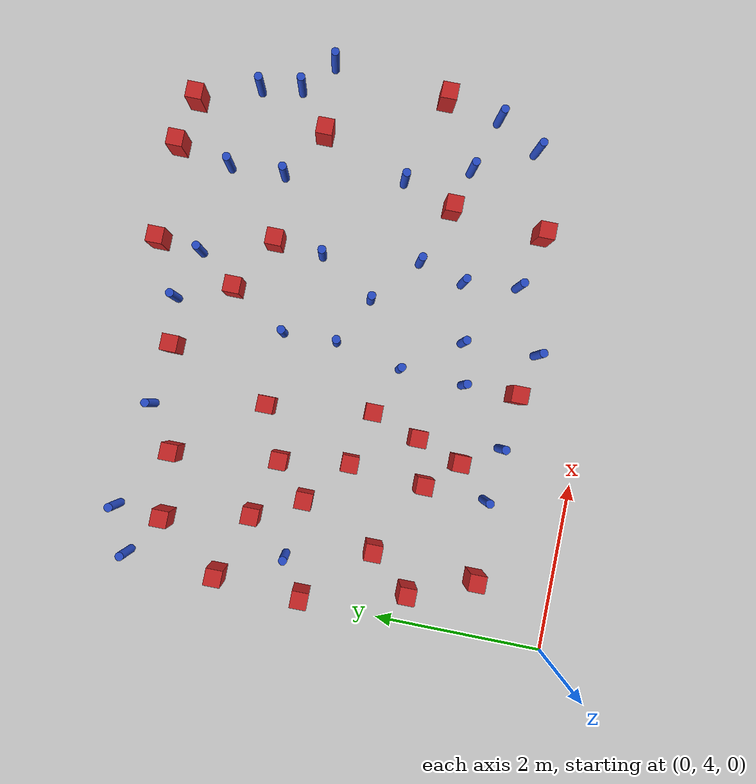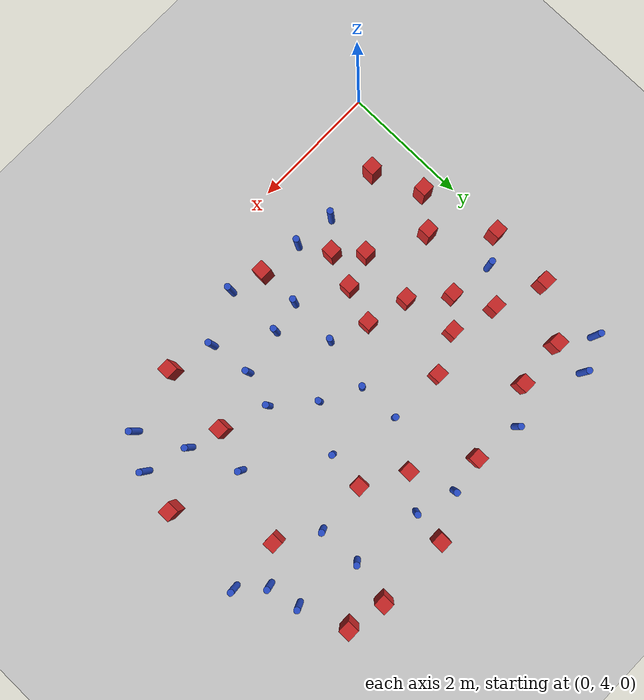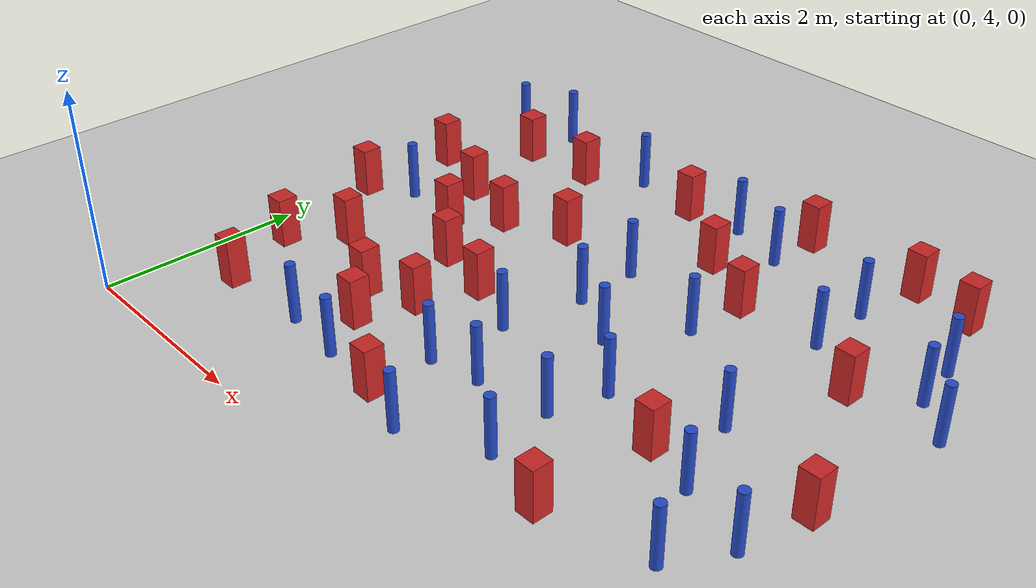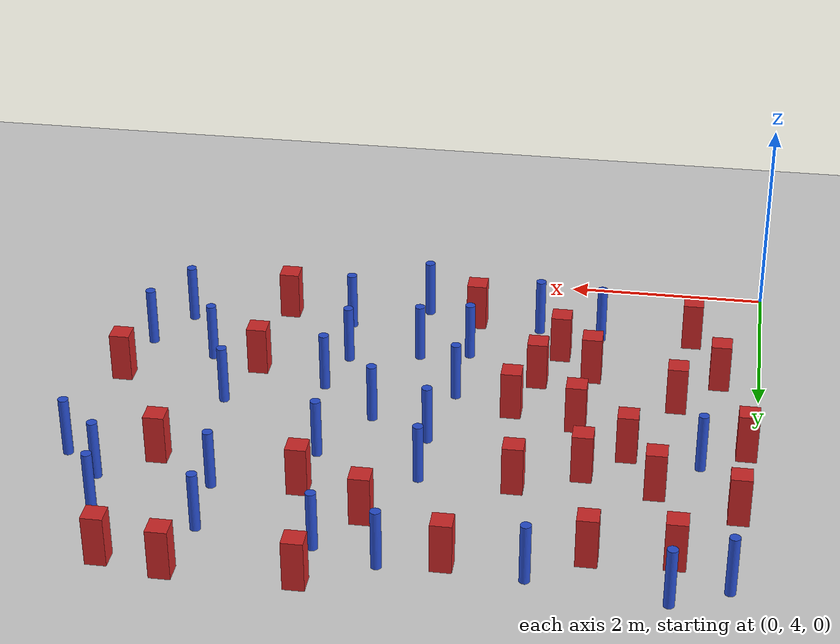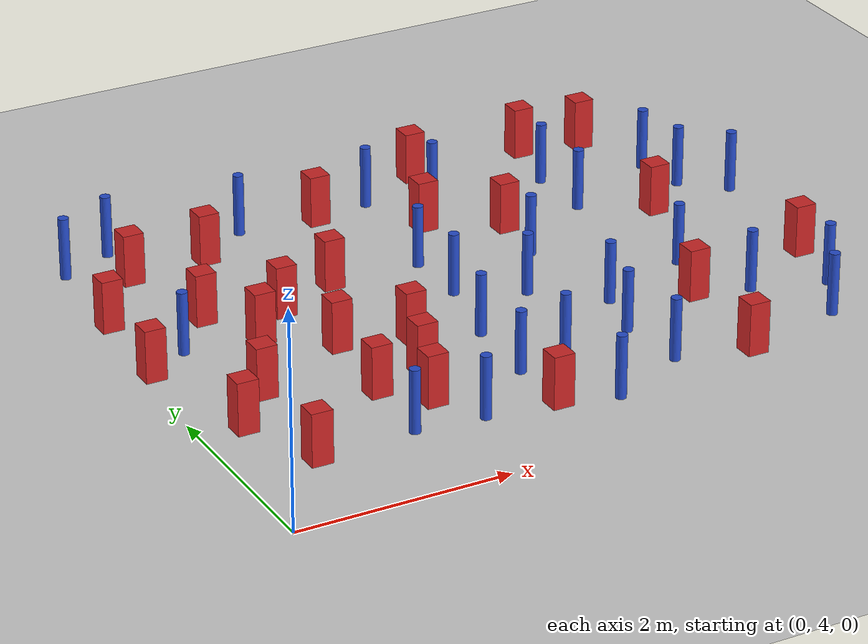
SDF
<sdf version="1.6">
 <world name="default">
  <model name="ground_plane">
   <static>1</static>
   <link name="link">
    <collision name="collision">
     <geometry><plane><normal>0 0 1</normal><size>100 100</size></plane></geometry>
     <surface><friction><ode><mu>100</mu><mu2>50</mu2></ode></friction></surface>
    </collision>
    <visual name="visual">
     <cast_shadows>0</cast_shadows>
     <geometry><plane><normal>0 0 1</normal><size>100 100</size></plane></geometry>
     <material>
      <ambient>1.0 1.0 1.0 1.0</ambient>
      <diffuse>0.8 0.8 0.8 1.0</diffuse>
      <specular>0.01 0.01 0.01 1.000000</specular>
     </material>
    </visual>
   </link>
  </model>
  <model name="pole_obstacle7">
   <static>true</static>
   <pose>3.45818707849 4.71534439706 7.38925637345e-09 -8.47170692798e-08 1.24976765033e-08 -1.74513093019e-07</pose>
   <link name="link">
    <pose>0 0 0.3 0 -0 0</pose>
    <inertial>
     <mass>1</mass>
     <inertia><ixx>0.145833</ixx><ixy>0</ixy><ixz>0</ixz><iyy>0.145833</iyy><iyz>0</iyz><izz>0.125</izz></inertia>
    </inertial>
    <collision name="collision">
     <geometry><cylinder><radius>0.05</radius><length>.6</length></cylinder></geometry>
    </collision>
    <visual name="visual">
     <geometry><cylinder><radius>0.05</radius><length>.6</length></cylinder></geometry>
     <material>
      <script><name>Gazebo/Blue</name><uri>file://media/materials/scripts/gazebo.material</uri></script>
     </material>
    </visual>
   </link>
  </model>
  <model name="square_post_obstacle20">
   <static>true</static>
   <pose>0.706519905904 8.71554573499 1.91545236811e-07 -7.35059704564e-06 1.12565212e-07 2.39332434364e-05</pose>
   <link name="link">
    <pose>0 0 0.25 0 -0 0</pose>
    <inertial>
     <mass>100</mass>
     <inertia>
      <ixx>0.166667</ixx>
      <ixy>0</ixy>
      <ixz>0</ixz>
      <iyy>0.166667</iyy>
      <iyz>0</iyz>
      <izz>0.166667</izz>
     </inertia>
    </inertial>
    <collision name="collision"><geometry><box><size>.2 .2 .5</size></box></geometry></collision>
    <visual name="visual">
     <geometry><box><size>.2 .2 .5</size></box></geometry>
     <material>
      <script><name>Gazebo/Red</name><uri>file://media/materials/scripts/gazebo.material</uri></script>
     </material>
    </visual>
   </link>
  </model>
  <model name="pole_obstacle13">
   <static>true</static>
   <pose>0.733278548144 9.29308297402 7.38925637345e-09 -8.47170692797e-08 1.249767648e-08 -1.74513093032e-07</pose>
   <link name="link">
    <pose>0 0 0.3 0 -0 0</pose>
    <inertial>
     <mass>1</mass>
     <inertia><ixx>0.145833</ixx><ixy>0</ixy><ixz>0</ixz><iyy>0.145833</iyy><iyz>0</iyz><izz>0.125</izz></inertia>
    </inertial>
    <collision name="collision">
     <geometry><cylinder><radius>0.05</radius><length>.6</length></cylinder></geometry>
    </collision>
    <visual name="visual">
     <geometry><cylinder><radius>0.05</radius><length>.6</length></cylinder></geometry>
     <material>
      <script><name>Gazebo/Blue</name><uri>file://media/materials/scripts/gazebo.material</uri></script>
     </material>
    </visual>
   </link>
  </model>
  <model name="square_post_obstacle28">
   <static>true</static>
   <pose>4.9093451671 4.91198864707 1.91545236811e-07 -7.35059704564e-06 1.12565212e-07 2.39332434364e-05</pose>
   <link name="link">
    <pose>0 0 0.25 0 -0 0</pose>
    <inertial>
     <mass>100</mass>
     <inertia>
      <ixx>0.166667</ixx>
      <ixy>0</ixy>
      <ixz>0</ixz>
      <iyy>0.166667</iyy>
      <iyz>0</iyz>
      <izz>0.166667</izz>
     </inertia>
    </inertial>
    <collision name="collision"><geometry><box><size>.2 .2 .5</size></box></geometry></collision>
    <visual name="visual">
     <geometry><box><size>.2 .2 .5</size></box></geometry>
     <material>
      <script><name>Gazebo/Red</name><uri>file://media/materials/scripts/gazebo.material</uri></script>
     </material>
    </visual>
   </link>
  </model>
  <model name="pole_obstacle20">
   <static>true</static>
   <pose>6.02067596225 8.62551435372 7.38925637345e-09 -8.471706928e-08 1.24976765081e-08 -1.74513093015e-07</pose>
   <link name="link">
    <pose>0 0 0.3 0 -0 0</pose>
    <inertial>
     <mass>1</mass>
     <inertia><ixx>0.145833</ixx><ixy>0</ixy><ixz>0</ixz><iyy>0.145833</iyy><iyz>0</iyz><izz>0.125</izz></inertia>
    </inertial>
    <collision name="collision">
     <geometry><cylinder><radius>0.05</radius><length>.6</length></cylinder></geometry>
    </collision>
    <visual name="visual">
     <geometry><cylinder><radius>0.05</radius><length>.6</length></cylinder></geometry>
     <material>
      <script><name>Gazebo/Blue</name><uri>file://media/materials/scripts/gazebo.material</uri></script>
     </material>
    </visual>
   </link>
  </model>
  <model name="pole_obstacle22">
   <static>true</static>
   <pose>5.23331904434 6.6819594275 7.38925637345e-09 -8.47170692796e-08 1.24976764786e-08 -1.74513093032e-07</pose>
   <link name="link">
    <pose>0 0 0.3 0 -0 0</pose>
    <inertial>
     <mass>1</mass>
     <inertia><ixx>0.145833</ixx><ixy>0</ixy><ixz>0</ixz><iyy>0.145833</iyy><iyz>0</iyz><izz>0.125</izz></inertia>
    </inertial>
    <collision name="collision">
     <geometry><cylinder><radius>0.05</radius><length>.6</length></cylinder></geometry>
    </collision>
    <visual name="visual">
     <geometry><cylinder><radius>0.05</radius><length>.6</length></cylinder></geometry>
     <material>
      <script><name>Gazebo/Blue</name><uri>file://media/materials/scripts/gazebo.material</uri></script>
     </material>
    </visual>
   </link>
  </model>
  <model name="pole_obstacle40">
   <static>true</static>
   <pose>5.00464682776 8.79937549846 7.38925637345e-09 -8.471706928e-08 1.24976765081e-08 -1.74513093015e-07</pose>
   <link name="link">
    <pose>0 0 0.3 0 -0 0</pose>
    <inertial>
     <mass>1</mass>
     <inertia><ixx>0.145833</ixx><ixy>0</ixy><ixz>0</ixz><iyy>0.145833</iyy><iyz>0</iyz><izz>0.125</izz></inertia>
    </inertial>
    <collision name="collision">
     <geometry><cylinder><radius>0.05</radius><length>.6</length></cylinder></geometry>
    </collision>
    <visual name="visual">
     <geometry><cylinder><radius>0.05</radius><length>.6</length></cylinder></geometry>
     <material>
      <script><name>Gazebo/Blue</name><uri>file://media/materials/scripts/gazebo.material</uri></script>
     </material>
    </visual>
   </link>
  </model>
  <model name="square_post_obstacle42">
   <static>true</static>
   <pose>1.62798420576 7.49462532593 1.91545236811e-07 -7.35059704564e-06 1.12565212e-07 2.39332434364e-05</pose>
   <link name="link">
    <pose>0 0 0.25 0 -0 0</pose>
    <inertial>
     <mass>100</mass>
     <inertia>
      <ixx>0.166667</ixx>
      <ixy>0</ixy>
      <ixz>0</ixz>
      <iyy>0.166667</iyy>
      <iyz>0</iyz>
      <izz>0.166667</izz>
     </inertia>
    </inertial>
    <collision name="collision"><geometry><box><size>.2 .2 .5</size></box></geometry></collision>
    <visual name="visual">
     <geometry><box><size>.2 .2 .5</size></box></geometry>
     <material>
      <script><name>Gazebo/Red</name><uri>file://media/materials/scripts/gazebo.material</uri></script>
     </material>
    </visual>
   </link>
  </model>
  <model name="square_post_obstacle58">
   <static>true</static>
   <pose>3.95230570504 9.45533754751 1.91545236811e-07 -7.35059704564e-06 1.12565212e-07 2.39332434364e-05</pose>
   <link name="link">
    <pose>0 0 0.25 0 -0 0</pose>
    <inertial>
     <mass>100</mass>
     <inertia>
      <ixx>0.166667</ixx>
      <ixy>0</ixy>
      <ixz>0</ixz>
      <iyy>0.166667</iyy>
      <iyz>0</iyz>
      <izz>0.166667</izz>
     </inertia>
    </inertial>
    <collision name="collision"><geometry><box><size>.2 .2 .5</size></box></geometry></collision>
    <visual name="visual">
     <geometry><box><size>.2 .2 .5</size></box></geometry>
     <material>
      <script><name>Gazebo/Red</name><uri>file://media/materials/scripts/gazebo.material</uri></script>
     </material>
    </visual>
   </link>
  </model>
  <model name="pole_obstacle57">
   <static>true</static>
   <pose>3.13184643353 7.76096580112 7.38925637345e-09 -8.47170692798e-08 1.24976765033e-08 -1.74513093019e-07</pose>
   <link name="link">
    <pose>0 0 0.3 0 -0 0</pose>
    <inertial>
     <mass>1</mass>
     <inertia><ixx>0.145833</ixx><ixy>0</ixy><ixz>0</ixz><iyy>0.145833</iyy><iyz>0</iyz><izz>0.125</izz></inertia>
    </inertial>
    <collision name="collision">
     <geometry><cylinder><radius>0.05</radius><length>.6</length></cylinder></geometry>
    </collision>
    <visual name="visual">
     <geometry><cylinder><radius>0.05</radius><length>.6</length></cylinder></geometry>
     <material>
      <script><name>Gazebo/Blue</name><uri>file://media/materials/scripts/gazebo.material</uri></script>
     </material>
    </visual>
   </link>
  </model>
  <model name="pole_obstacle61">
   <static>true</static>
   <pose>4.1423843626 5.75229420905 7.38925637345e-09 -8.47170692796e-08 1.24976764786e-08 -1.74513093032e-07</pose>
   <link name="link">
    <pose>0 0 0.3 0 -0 0</pose>
    <inertial>
     <mass>1</mass>
     <inertia><ixx>0.145833</ixx><ixy>0</ixy><ixz>0</ixz><iyy>0.145833</iyy><iyz>0</iyz><izz>0.125</izz></inertia>
    </inertial>
    <collision name="collision">
     <geometry><cylinder><radius>0.05</radius><length>.6</length></cylinder></geometry>
    </collision>
    <visual name="visual">
     <geometry><cylinder><radius>0.05</radius><length>.6</length></cylinder></geometry>
     <material>
      <script><name>Gazebo/Blue</name><uri>file://media/materials/scripts/gazebo.material</uri></script>
     </material>
    </visual>
   </link>
  </model>
  <model name="square_post_obstacle65">
   <static>true</static>
   <pose>0.699421097335 4.95652367737 1.91545236811e-07 -7.35059704564e-06 1.12565212e-07 2.39332434364e-05</pose>
   <link name="link">
    <pose>0 0 0.25 0 -0 0</pose>
    <inertial>
     <mass>100</mass>
     <inertia>
      <ixx>0.166667</ixx>
      <ixy>0</ixy>
      <ixz>0</ixz>
      <iyy>0.166667</iyy>
      <iyz>0</iyz>
      <izz>0.166667</izz>
     </inertia>
    </inertial>
    <collision name="collision"><geometry><box><size>.2 .2 .5</size></box></geometry></collision>
    <visual name="visual">
     <geometry><box><size>.2 .2 .5</size></box></geometry>
     <material>
      <script><name>Gazebo/Red</name><uri>file://media/materials/scripts/gazebo.material</uri></script>
     </material>
    </visual>
   </link>
  </model>
  <model name="square_post_obstacle70">
   <static>true</static>
   <pose>0.396949594383 5.72294644987 1.91545236811e-07 -7.35059704564e-06 1.12565212e-07 2.39332434364e-05</pose>
   <link name="link">
    <pose>0 0 0.25 0 -0 0</pose>
    <inertial>
     <mass>100</mass>
     <inertia>
      <ixx>0.166667</ixx>
      <ixy>0</ixy>
      <ixz>0</ixz>
      <iyy>0.166667</iyy>
      <iyz>0</iyz>
      <izz>0.166667</izz>
     </inertia>
    </inertial>
    <collision name="collision"><geometry><box><size>.2 .2 .5</size></box></geometry></collision>
    <visual name="visual">
     <geometry><box><size>.2 .2 .5</size></box></geometry>
     <material>
      <script><name>Gazebo/Red</name><uri>file://media/materials/scripts/gazebo.material</uri></script>
     </material>
    </visual>
   </link>
  </model>
  <model name="square_post_obstacle72">
   <static>true</static>
   <pose>0.109292458335 6.9389116177 1.91545236811e-07 -7.35059704564e-06 1.12565212e-07 2.39332434364e-05</pose>
   <link name="link">
    <pose>0 0 0.25 0 -0 0</pose>
    <inertial>
     <mass>100</mass>
     <inertia>
      <ixx>0.166667</ixx>
      <ixy>0</ixy>
      <ixz>0</ixz>
      <iyy>0.166667</iyy>
      <iyz>0</iyz>
      <izz>0.166667</izz>
     </inertia>
    </inertial>
    <collision name="collision"><geometry><box><size>.2 .2 .5</size></box></geometry></collision>
    <visual name="visual">
     <geometry><box><size>.2 .2 .5</size></box></geometry>
     <material>
      <script><name>Gazebo/Red</name><uri>file://media/materials/scripts/gazebo.material</uri></script>
     </material>
    </visual>
   </link>
  </model>
  <model name="square_post_obstacle78">
   <static>true</static>
   <pose>6.33465337048 6.36357120011 1.91545236811e-07 -7.35059704564e-06 1.12565212e-07 2.39332434364e-05</pose>
   <link name="link">
    <pose>0 0 0.25 0 -0 0</pose>
    <inertial>
     <mass>100</mass>
     <inertia>
      <ixx>0.166667</ixx>
      <ixy>0</ixy>
      <ixz>0</ixz>
      <iyy>0.166667</iyy>
      <iyz>0</iyz>
      <izz>0.166667</izz>
     </inertia>
    </inertial>
    <collision name="collision"><geometry><box><size>.2 .2 .5</size></box></geometry></collision>
    <visual name="visual">
     <geometry><box><size>.2 .2 .5</size></box></geometry>
     <material>
      <script><name>Gazebo/Red</name><uri>file://media/materials/scripts/gazebo.material</uri></script>
     </material>
    </visual>
   </link>
  </model>
  <model name="pole_obstacle84">
   <static>true</static>
   <pose>4.29098712926 6.30558222711 7.38925637345e-09 -8.47170692796e-08 1.24976764786e-08 -1.74513093032e-07</pose>
   <link name="link">
    <pose>0 0 0.3 0 -0 0</pose>
    <inertial>
     <mass>1</mass>
     <inertia><ixx>0.145833</ixx><ixy>0</ixy><ixz>0</ixz><iyy>0.145833</iyy><iyz>0</iyz><izz>0.125</izz></inertia>
    </inertial>
    <collision name="collision">
     <geometry><cylinder><radius>0.05</radius><length>.6</length></cylinder></geometry>
    </collision>
    <visual name="visual">
     <geometry><cylinder><radius>0.05</radius><length>.6</length></cylinder></geometry>
     <material>
      <script><name>Gazebo/Blue</name><uri>file://media/materials/scripts/gazebo.material</uri></script>
     </material>
    </visual>
   </link>
  </model>
  <model name="pole_obstacle85">
   <static>true</static>
   <pose>5.90557617348 5.16954483109 7.38925637345e-09 -8.47170692796e-08 1.24976764786e-08 -1.74513093032e-07</pose>
   <link name="link">
    <pose>0 0 0.3 0 -0 0</pose>
    <inertial>
     <mass>1</mass>
     <inertia><ixx>0.145833</ixx><ixy>0</ixy><ixz>0</ixz><iyy>0.145833</iyy><iyz>0</iyz><izz>0.125</izz></inertia>
    </inertial>
    <collision name="collision">
     <geometry><cylinder><radius>0.05</radius><length>.6</length></cylinder></geometry>
    </collision>
    <visual name="visual">
     <geometry><cylinder><radius>0.05</radius><length>.6</length></cylinder></geometry>
     <material>
      <script><name>Gazebo/Blue</name><uri>file://media/materials/scripts/gazebo.material</uri></script>
     </material>
    </visual>
   </link>
  </model>
  <model name="square_post_obstacle80">
   <static>true</static>
   <pose>5.01104141277 6.0516178693 1.91545236811e-07 -7.35059704564e-06 1.12565212e-07 2.39332434364e-05</pose>
   <link name="link">
    <pose>0 0 0.25 0 -0 0</pose>
    <inertial>
     <mass>100</mass>
     <inertia>
      <ixx>0.166667</ixx>
      <ixy>0</ixy>
      <ixz>0</ixz>
      <iyy>0.166667</iyy>
      <iyz>0</iyz>
      <izz>0.166667</izz>
     </inertia>
    </inertial>
    <collision name="collision"><geometry><box><size>.2 .2 .5</size></box></geometry></collision>
    <visual name="visual">
     <geometry><box><size>.2 .2 .5</size></box></geometry>
     <material>
      <script><name>Gazebo/Red</name><uri>file://media/materials/scripts/gazebo.material</uri></script>
     </material>
    </visual>
   </link>
  </model>
  <model name="pole_obstacle86">
   <static>true</static>
   <pose>0.216465256261 9.05146527783 7.38925637345e-09 -8.47170692797e-08 1.24976764785e-08 -1.74513093032e-07</pose>
   <link name="link">
    <pose>0 0 0.3 0 -0 0</pose>
    <inertial>
     <mass>1</mass>
     <inertia><ixx>0.145833</ixx><ixy>0</ixy><ixz>0</ixz><iyy>0.145833</iyy><iyz>0</iyz><izz>0.125</izz></inertia>
    </inertial>
    <collision name="collision">
     <geometry><cylinder><radius>0.05</radius><length>.6</length></cylinder></geometry>
    </collision>
    <visual name="visual">
     <geometry><cylinder><radius>0.05</radius><length>.6</length></cylinder></geometry>
     <material>
      <script><name>Gazebo/Blue</name><uri>file://media/materials/scripts/gazebo.material</uri></script>
     </material>
    </visual>
   </link>
  </model>
  <model name="pole_obstacle88">
   <static>true</static>
   <pose>1.63266606177 5.00346483129 7.38925637345e-09 -8.47170692799e-08 1.24976765033e-08 -1.74513093018e-07</pose>
   <link name="link">
    <pose>0 0 0.3 0 -0 0</pose>
    <inertial>
     <mass>1</mass>
     <inertia><ixx>0.145833</ixx><ixy>0</ixy><ixz>0</ixz><iyy>0.145833</iyy><iyz>0</iyz><izz>0.125</izz></inertia>
    </inertial>
    <collision name="collision">
     <geometry><cylinder><radius>0.05</radius><length>.6</length></cylinder></geometry>
    </collision>
    <visual name="visual">
     <geometry><cylinder><radius>0.05</radius><length>.6</length></cylinder></geometry>
     <material>
      <script><name>Gazebo/Blue</name><uri>file://media/materials/scripts/gazebo.material</uri></script>
     </material>
    </visual>
   </link>
  </model>
  <model name="square_post_obstacle82">
   <static>true</static>
   <pose>1.23347405271 7.11508592962 1.91545236811e-07 -7.35059704564e-06 1.12565212e-07 2.39332434364e-05</pose>
   <link name="link">
    <pose>0 0 0.25 0 -0 0</pose>
    <inertial>
     <mass>100</mass>
     <inertia>
      <ixx>0.166667</ixx>
      <ixy>0</ixy>
      <ixz>0</ixz>
      <iyy>0.166667</iyy>
      <iyz>0</iyz>
      <izz>0.166667</izz>
     </inertia>
    </inertial>
    <collision name="collision"><geometry><box><size>.2 .2 .5</size></box></geometry></collision>
    <visual name="visual">
     <geometry><box><size>.2 .2 .5</size></box></geometry>
     <material>
      <script><name>Gazebo/Red</name><uri>file://media/materials/scripts/gazebo.material</uri></script>
     </material>
    </visual>
   </link>
  </model>
  <model name="square_post_obstacle83">
   <static>true</static>
   <pose>2.24390188948 7.77510202769 1.91545236811e-07 -7.35059704564e-06 1.12565212e-07 2.39332434364e-05</pose>
   <link name="link">
    <pose>0 0 0.25 0 -0 0</pose>
    <inertial>
     <mass>100</mass>
     <inertia>
      <ixx>0.166667</ixx>
      <ixy>0</ixy>
      <ixz>0</ixz>
      <iyy>0.166667</iyy>
      <iyz>0</iyz>
      <izz>0.166667</izz>
     </inertia>
    </inertial>
    <collision name="collision"><geometry><box><size>.2 .2 .5</size></box></geometry></collision>
    <visual name="visual">
     <geometry><box><size>.2 .2 .5</size></box></geometry>
     <material>
      <script><name>Gazebo/Red</name><uri>file://media/materials/scripts/gazebo.material</uri></script>
     </material>
    </visual>
   </link>
  </model>
  <model name="pole_obstacle97">
   <static>true</static>
   <pose>5.02307524044 8.12998833745 7.38925637345e-09 -8.471706928e-08 1.24976765081e-08 -1.74513093015e-07</pose>
   <link name="link">
    <pose>0 0 0.3 0 -0 0</pose>
    <inertial>
     <mass>1</mass>
     <inertia><ixx>0.145833</ixx><ixy>0</ixy><ixz>0</ixz><iyy>0.145833</iyy><iyz>0</iyz><izz>0.125</izz></inertia>
    </inertial>
    <collision name="collision">
     <geometry><cylinder><radius>0.05</radius><length>.6</length></cylinder></geometry>
    </collision>
    <visual name="visual">
     <geometry><cylinder><radius>0.05</radius><length>.6</length></cylinder></geometry>
     <material>
      <script><name>Gazebo/Blue</name><uri>file://media/materials/scripts/gazebo.material</uri></script>
     </material>
    </visual>
   </link>
  </model>
  <model name="pole_obstacle99">
   <static>true</static>
   <pose>4.14568928781 7.48089213057 7.38925637345e-09 -8.47170692796e-08 1.24976764786e-08 -1.74513093032e-07</pose>
   <link name="link">
    <pose>0 0 0.3 0 -0 0</pose>
    <inertial>
     <mass>1</mass>
     <inertia><ixx>0.145833</ixx><ixy>0</ixy><ixz>0</ixz><iyy>0.145833</iyy><iyz>0</iyz><izz>0.125</izz></inertia>
    </inertial>
    <collision name="collision">
     <geometry><cylinder><radius>0.05</radius><length>.6</length></cylinder></geometry>
    </collision>
    <visual name="visual">
     <geometry><cylinder><radius>0.05</radius><length>.6</length></cylinder></geometry>
     <material>
      <script><name>Gazebo/Blue</name><uri>file://media/materials/scripts/gazebo.material</uri></script>
     </material>
    </visual>
   </link>
  </model>
  <model name="pole_obstacle104">
   <static>true</static>
   <pose>3.43317137591 5.61702307809 7.38925637345e-09 -8.47170692798e-08 1.24976765033e-08 -1.74513093019e-07</pose>
   <link name="link">
    <pose>0 0 0.3 0 -0 0</pose>
    <inertial>
     <mass>1</mass>
     <inertia><ixx>0.145833</ixx><ixy>0</ixy><ixz>0</ixz><iyy>0.145833</iyy><iyz>0</iyz><izz>0.125</izz></inertia>
    </inertial>
    <collision name="collision">
     <geometry><cylinder><radius>0.05</radius><length>.6</length></cylinder></geometry>
    </collision>
    <visual name="visual">
     <geometry><cylinder><radius>0.05</radius><length>.6</length></cylinder></geometry>
     <material>
      <script><name>Gazebo/Blue</name><uri>file://media/materials/scripts/gazebo.material</uri></script>
     </material>
    </visual>
   </link>
  </model>
  <model name="square_post_obstacle94">
   <static>true</static>
   <pose>5.74351718841 9.35509871955 1.91545236811e-07 -7.35059704564e-06 1.12565212e-07 2.39332434364e-05</pose>
   <link name="link">
    <pose>0 0 0.25 0 -0 0</pose>
    <inertial>
     <mass>100</mass>
     <inertia>
      <ixx>0.166667</ixx>
      <ixy>0</ixy>
      <ixz>0</ixz>
      <iyy>0.166667</iyy>
      <iyz>0</iyz>
      <izz>0.166667</izz>
     </inertia>
    </inertial>
    <collision name="collision"><geometry><box><size>.2 .2 .5</size></box></geometry></collision>
    <visual name="visual">
     <geometry><box><size>.2 .2 .5</size></box></geometry>
     <material>
      <script><name>Gazebo/Red</name><uri>file://media/materials/scripts/gazebo.material</uri></script>
     </material>
    </visual>
   </link>
  </model>
  <model name="pole_obstacle112">
   <static>true</static>
   <pose>6.49043203627 7.79184761885 7.38925637345e-09 -8.47170692796e-08 1.24976764786e-08 -1.74513093032e-07</pose>
   <link name="link">
    <pose>0 0 0.3 0 -0 0</pose>
    <inertial>
     <mass>1</mass>
     <inertia><ixx>0.145833</ixx><ixy>0</ixy><ixz>0</ixz><iyy>0.145833</iyy><iyz>0</iyz><izz>0.125</izz></inertia>
    </inertial>
    <collision name="collision">
     <geometry><cylinder><radius>0.05</radius><length>.6</length></cylinder></geometry>
    </collision>
    <visual name="visual">
     <geometry><cylinder><radius>0.05</radius><length>.6</length></cylinder></geometry>
     <material>
      <script><name>Gazebo/Blue</name><uri>file://media/materials/scripts/gazebo.material</uri></script>
     </material>
    </visual>
   </link>
  </model>
  <model name="square_post_obstacle99">
   <static>true</static>
   <pose>1.47931548784 8.77150223689 1.91545236811e-07 -7.35059704564e-06 1.12565212e-07 2.39332434364e-05</pose>
   <link name="link">
    <pose>0 0 0.25 0 -0 0</pose>
    <inertial>
     <mass>100</mass>
     <inertia>
      <ixx>0.166667</ixx>
      <ixy>0</ixy>
      <ixz>0</ixz>
      <iyy>0.166667</iyy>
      <iyz>0</iyz>
      <izz>0.166667</izz>
     </inertia>
    </inertial>
    <collision name="collision"><geometry><box><size>.2 .2 .5</size></box></geometry></collision>
    <visual name="visual">
     <geometry><box><size>.2 .2 .5</size></box></geometry>
     <material>
      <script><name>Gazebo/Red</name><uri>file://media/materials/scripts/gazebo.material</uri></script>
     </material>
    </visual>
   </link>
  </model>
  <model name="pole_obstacle113">
   <static>true</static>
   <pose>2.93364550593 5.51625658026 7.38925637345e-09 -8.47170692798e-08 1.24976765033e-08 -1.74513093019e-07</pose>
   <link name="link">
    <pose>0 0 0.3 0 -0 0</pose>
    <inertial>
     <mass>1</mass>
     <inertia><ixx>0.145833</ixx><ixy>0</ixy><ixz>0</ixz><iyy>0.145833</iyy><iyz>0</iyz><izz>0.125</izz></inertia>
    </inertial>
    <collision name="collision">
     <geometry><cylinder><radius>0.05</radius><length>.6</length></cylinder></geometry>
    </collision>
    <visual name="visual">
     <geometry><cylinder><radius>0.05</radius><length>.6</length></cylinder></geometry>
     <material>
      <script><name>Gazebo/Blue</name><uri>file://media/materials/scripts/gazebo.material</uri></script>
     </material>
    </visual>
   </link>
  </model>
  <model name="square_post_obstacle100">
   <static>true</static>
   <pose>5.6213648059 7.74204888092 1.91545236811e-07 -7.35059704564e-06 1.12565212e-07 2.39332434364e-05</pose>
   <link name="link">
    <pose>0 0 0.25 0 -0 0</pose>
    <inertial>
     <mass>100</mass>
     <inertia>
      <ixx>0.166667</ixx>
      <ixy>0</ixy>
      <ixz>0</ixz>
      <iyy>0.166667</iyy>
      <iyz>0</iyz>
      <izz>0.166667</izz>
     </inertia>
    </inertial>
    <collision name="collision"><geometry><box><size>.2 .2 .5</size></box></geometry></collision>
    <visual name="visual">
     <geometry><box><size>.2 .2 .5</size></box></geometry>
     <material>
      <script><name>Gazebo/Red</name><uri>file://media/materials/scripts/gazebo.material</uri></script>
     </material>
    </visual>
   </link>
  </model>
  <model name="pole_obstacle118">
   <static>true</static>
   <pose>2.97539552466 6.29789076094 7.38925637345e-09 -8.47170692798e-08 1.24976765033e-08 -1.74513093019e-07</pose>
   <link name="link">
    <pose>0 0 0.3 0 -0 0</pose>
    <inertial>
     <mass>1</mass>
     <inertia><ixx>0.145833</ixx><ixy>0</ixy><ixz>0</ixz><iyy>0.145833</iyy><iyz>0</iyz><izz>0.125</izz></inertia>
    </inertial>
    <collision name="collision">
     <geometry><cylinder><radius>0.05</radius><length>.6</length></cylinder></geometry>
    </collision>
    <visual name="visual">
     <geometry><cylinder><radius>0.05</radius><length>.6</length></cylinder></geometry>
     <material>
      <script><name>Gazebo/Blue</name><uri>file://media/materials/scripts/gazebo.material</uri></script>
     </material>
    </visual>
   </link>
  </model>
  <model name="square_post_obstacle108">
   <static>true</static>
   <pose>2.01307368506 5.39474535514 1.91545236811e-07 -7.35059704564e-06 1.12565212e-07 2.39332434364e-05</pose>
   <link name="link">
    <pose>0 0 0.25 0 -0 0</pose>
    <inertial>
     <mass>100</mass>
     <inertia>
      <ixx>0.166667</ixx>
      <ixy>0</ixy>
      <ixz>0</ixz>
      <iyy>0.166667</iyy>
      <iyz>0</iyz>
      <izz>0.166667</izz>
     </inertia>
    </inertial>
    <collision name="collision"><geometry><box><size>.2 .2 .5</size></box></geometry></collision>
    <visual name="visual">
     <geometry><box><size>.2 .2 .5</size></box></geometry>
     <material>
      <script><name>Gazebo/Red</name><uri>file://media/materials/scripts/gazebo.material</uri></script>
     </material>
    </visual>
   </link>
  </model>
  <model name="pole_obstacle123">
   <static>true</static>
   <pose>1.99123622917 9.13279358135 7.38925637345e-09 -8.47170692798e-08 1.24976764928e-08 -1.74513093023e-07</pose>
   <link name="link">
    <pose>0 0 0.3 0 -0 0</pose>
    <inertial>
     <mass>1</mass>
     <inertia><ixx>0.145833</ixx><ixy>0</ixy><ixz>0</ixz><iyy>0.145833</iyy><iyz>0</iyz><izz>0.125</izz></inertia>
    </inertial>
    <collision name="collision">
     <geometry><cylinder><radius>0.05</radius><length>.6</length></cylinder></geometry>
    </collision>
    <visual name="visual">
     <geometry><cylinder><radius>0.05</radius><length>.6</length></cylinder></geometry>
     <material>
      <script><name>Gazebo/Blue</name><uri>file://media/materials/scripts/gazebo.material</uri></script>
     </material>
    </visual>
   </link>
  </model>
  <model name="pole_obstacle130">
   <static>true</static>
   <pose>5.52186217153 5.90558767859 7.38925637345e-09 -8.47170692796e-08 1.24976764786e-08 -1.74513093032e-07</pose>
   <link name="link">
    <pose>0 0 0.3 0 -0 0</pose>
    <inertial>
     <mass>1</mass>
     <inertia><ixx>0.145833</ixx><ixy>0</ixy><ixz>0</ixz><iyy>0.145833</iyy><iyz>0</iyz><izz>0.125</izz></inertia>
    </inertial>
    <collision name="collision">
     <geometry><cylinder><radius>0.05</radius><length>.6</length></cylinder></geometry>
    </collision>
    <visual name="visual">
     <geometry><cylinder><radius>0.05</radius><length>.6</length></cylinder></geometry>
     <material>
      <script><name>Gazebo/Blue</name><uri>file://media/materials/scripts/gazebo.material</uri></script>
     </material>
    </visual>
   </link>
  </model>
  <model name="square_post_obstacle115">
   <static>true</static>
   <pose>2.20089739189 5.93668072507 1.91545236811e-07 -7.35059704564e-06 1.12565212e-07 2.39332434364e-05</pose>
   <link name="link">
    <pose>0 0 0.25 0 -0 0</pose>
    <inertial>
     <mass>100</mass>
     <inertia>
      <ixx>0.166667</ixx>
      <ixy>0</ixy>
      <ixz>0</ixz>
      <iyy>0.166667</iyy>
      <iyz>0</iyz>
      <izz>0.166667</izz>
     </inertia>
    </inertial>
    <collision name="collision"><geometry><box><size>.2 .2 .5</size></box></geometry></collision>
    <visual name="visual">
     <geometry><box><size>.2 .2 .5</size></box></geometry>
     <material>
      <script><name>Gazebo/Red</name><uri>file://media/materials/scripts/gazebo.material</uri></script>
     </material>
    </visual>
   </link>
  </model>
  <model name="square_post_obstacle116">
   <static>true</static>
   <pose>2.72937033948 9.02517224 1.91545236811e-07 -7.35059704564e-06 1.12565212e-07 2.39332434364e-05</pose>
   <link name="link">
    <pose>0 0 0.25 0 -0 0</pose>
    <inertial>
     <mass>100</mass>
     <inertia>
      <ixx>0.166667</ixx>
      <ixy>0</ixy>
      <ixz>0</ixz>
      <iyy>0.166667</iyy>
      <iyz>0</iyz>
      <izz>0.166667</izz>
     </inertia>
    </inertial>
    <collision name="collision"><geometry><box><size>.2 .2 .5</size></box></geometry></collision>
    <visual name="visual">
     <geometry><box><size>.2 .2 .5</size></box></geometry>
     <material>
      <script><name>Gazebo/Red</name><uri>file://media/materials/scripts/gazebo.material</uri></script>
     </material>
    </visual>
   </link>
  </model>
  <model name="pole_obstacle138">
   <static>true</static>
   <pose>3.72824430226 6.80275013608 7.38925637345e-09 -8.47170692798e-08 1.24976765033e-08 -1.74513093019e-07</pose>
   <link name="link">
    <pose>0 0 0.3 0 -0 0</pose>
    <inertial>
     <mass>1</mass>
     <inertia><ixx>0.145833</ixx><ixy>0</ixy><ixz>0</ixz><iyy>0.145833</iyy><iyz>0</iyz><izz>0.125</izz></inertia>
    </inertial>
    <collision name="collision">
     <geometry><cylinder><radius>0.05</radius><length>.6</length></cylinder></geometry>
    </collision>
    <visual name="visual">
     <geometry><cylinder><radius>0.05</radius><length>.6</length></cylinder></geometry>
     <material>
      <script><name>Gazebo/Blue</name><uri>file://media/materials/scripts/gazebo.material</uri></script>
     </material>
    </visual>
   </link>
  </model>
  <model name="pole_obstacle139">
   <static>true</static>
   <pose>4.22440995247 5.08591903836 7.38925637345e-09 -8.47170692796e-08 1.24976764786e-08 -1.74513093032e-07</pose>
   <link name="link">
    <pose>0 0 0.3 0 -0 0</pose>
    <inertial>
     <mass>1</mass>
     <inertia><ixx>0.145833</ixx><ixy>0</ixy><ixz>0</ixz><iyy>0.145833</iyy><iyz>0</iyz><izz>0.125</izz></inertia>
    </inertial>
    <collision name="collision">
     <geometry><cylinder><radius>0.05</radius><length>.6</length></cylinder></geometry>
    </collision>
    <visual name="visual">
     <geometry><cylinder><radius>0.05</radius><length>.6</length></cylinder></geometry>
     <material>
      <script><name>Gazebo/Blue</name><uri>file://media/materials/scripts/gazebo.material</uri></script>
     </material>
    </visual>
   </link>
  </model>
  <model name="pole_obstacle141">
   <static>true</static>
   <pose>3.29915233947 9.11850831961 7.38925637345e-09 -8.47170692793e-08 1.24976764408e-08 -1.74513093041e-07</pose>
   <link name="link">
    <pose>0 0 0.3 0 -0 0</pose>
    <inertial>
     <mass>1</mass>
     <inertia><ixx>0.145833</ixx><ixy>0</ixy><ixz>0</ixz><iyy>0.145833</iyy><iyz>0</iyz><izz>0.125</izz></inertia>
    </inertial>
    <collision name="collision">
     <geometry><cylinder><radius>0.05</radius><length>.6</length></cylinder></geometry>
    </collision>
    <visual name="visual">
     <geometry><cylinder><radius>0.05</radius><length>.6</length></cylinder></geometry>
     <material>
      <script><name>Gazebo/Blue</name><uri>file://media/materials/scripts/gazebo.material</uri></script>
     </material>
    </visual>
   </link>
  </model>
  <model name="square_post_obstacle128">
   <static>true</static>
   <pose>0.804692879974 6.20136211801 1.91545236811e-07 -7.35059704564e-06 1.12565212e-07 2.39332434364e-05</pose>
   <link name="link">
    <pose>0 0 0.25 0 -0 0</pose>
    <inertial>
     <mass>100</mass>
     <inertia>
      <ixx>0.166667</ixx>
      <ixy>0</ixy>
      <ixz>0</ixz>
      <iyy>0.166667</iyy>
      <iyz>0</iyz>
      <izz>0.166667</izz>
     </inertia>
    </inertial>
    <collision name="collision"><geometry><box><size>.2 .2 .5</size></box></geometry></collision>
    <visual name="visual">
     <geometry><box><size>.2 .2 .5</size></box></geometry>
     <material>
      <script><name>Gazebo/Red</name><uri>file://media/materials/scripts/gazebo.material</uri></script>
     </material>
    </visual>
   </link>
  </model>
  <model name="square_post_obstacle135">
   <static>true</static>
   <pose>4.20270983211 8.07016262215 1.91545236811e-07 -7.35059704564e-06 1.12565212e-07 2.39332434364e-05</pose>
   <link name="link">
    <pose>0 0 0.25 0 -0 0</pose>
    <inertial>
     <mass>100</mass>
     <inertia>
      <ixx>0.166667</ixx>
      <ixy>0</ixy>
      <ixz>0</ixz>
      <iyy>0.166667</iyy>
      <iyz>0</iyz>
      <izz>0.166667</izz>
     </inertia>
    </inertial>
    <collision name="collision"><geometry><box><size>.2 .2 .5</size></box></geometry></collision>
    <visual name="visual">
     <geometry><box><size>.2 .2 .5</size></box></geometry>
     <material>
      <script><name>Gazebo/Red</name><uri>file://media/materials/scripts/gazebo.material</uri></script>
     </material>
    </visual>
   </link>
  </model>
  <model name="square_post_obstacle140">
   <static>true</static>
   <pose>3.55089765519 8.44272123105 1.91545236811e-07 -7.35059704564e-06 1.12565212e-07 2.39332434364e-05</pose>
   <link name="link">
    <pose>0 0 0.25 0 -0 0</pose>
    <inertial>
     <mass>100</mass>
     <inertia>
      <ixx>0.166667</ixx>
      <ixy>0</ixy>
      <ixz>0</ixz>
      <iyy>0.166667</iyy>
      <iyz>0</iyz>
      <izz>0.166667</izz>
     </inertia>
    </inertial>
    <collision name="collision"><geometry><box><size>.2 .2 .5</size></box></geometry></collision>
    <visual name="visual">
     <geometry><box><size>.2 .2 .5</size></box></geometry>
     <material>
      <script><name>Gazebo/Red</name><uri>file://media/materials/scripts/gazebo.material</uri></script>
     </material>
    </visual>
   </link>
  </model>
  <model name="square_post_obstacle144">
   <static>true</static>
   <pose>1.75549071693 6.66935452309 1.91545236811e-07 -7.35059704564e-06 1.12565212e-07 2.39332434364e-05</pose>
   <link name="link">
    <pose>0 0 0.25 0 -0 0</pose>
    <inertial>
     <mass>100</mass>
     <inertia>
      <ixx>0.166667</ixx>
      <ixy>0</ixy>
      <ixz>0</ixz>
      <iyy>0.166667</iyy>
      <iyz>0</iyz>
      <izz>0.166667</izz>
     </inertia>
    </inertial>
    <collision name="collision"><geometry><box><size>.2 .2 .5</size></box></geometry></collision>
    <visual name="visual">
     <geometry><box><size>.2 .2 .5</size></box></geometry>
     <material>
      <script><name>Gazebo/Red</name><uri>file://media/materials/scripts/gazebo.material</uri></script>
     </material>
    </visual>
   </link>
  </model>
  <model name="pole_obstacle159">
   <static>true</static>
   <pose>0.534402869463 7.20969541163 7.38925637345e-09 -8.47170692799e-08 1.24976765073e-08 -1.74513093015e-07</pose>
   <link name="link">
    <pose>0 0 0.3 0 -0 0</pose>
    <inertial>
     <mass>1</mass>
     <inertia><ixx>0.145833</ixx><ixy>0</ixy><ixz>0</ixz><iyy>0.145833</iyy><iyz>0</iyz><izz>0.125</izz></inertia>
    </inertial>
    <collision name="collision">
     <geometry><cylinder><radius>0.05</radius><length>.6</length></cylinder></geometry>
    </collision>
    <visual name="visual">
     <geometry><cylinder><radius>0.05</radius><length>.6</length></cylinder></geometry>
     <material>
      <script><name>Gazebo/Blue</name><uri>file://media/materials/scripts/gazebo.material</uri></script>
     </material>
    </visual>
   </link>
  </model>
  <model name="pole_obstacle163">
   <static>true</static>
   <pose>6.20714966365 5.69034070111 7.38925637345e-09 -8.47170692796e-08 1.24976764786e-08 -1.74513093032e-07</pose>
   <link name="link">
    <pose>0 0 0.3 0 -0 0</pose>
    <inertial>
     <mass>1</mass>
     <inertia><ixx>0.145833</ixx><ixy>0</ixy><ixz>0</ixz><iyy>0.145833</iyy><iyz>0</iyz><izz>0.125</izz></inertia>
    </inertial>
    <collision name="collision">
     <geometry><cylinder><radius>0.05</radius><length>.6</length></cylinder></geometry>
    </collision>
    <visual name="visual">
     <geometry><cylinder><radius>0.05</radius><length>.6</length></cylinder></geometry>
     <material>
      <script><name>Gazebo/Blue</name><uri>file://media/materials/scripts/gazebo.material</uri></script>
     </material>
    </visual>
   </link>
  </model>
  <model name="square_post_obstacle158">
   <static>true</static>
   <pose>0.937893276685 7.6906492329 1.91545236811e-07 -7.35059704564e-06 1.12565212e-07 2.39332434364e-05</pose>
   <link name="link">
    <pose>0 0 0.25 0 -0 0</pose>
    <inertial>
     <mass>100</mass>
     <inertia>
      <ixx>0.166667</ixx>
      <ixy>0</ixy>
      <ixz>0</ixz>
      <iyy>0.166667</iyy>
      <iyz>0</iyz>
      <izz>0.166667</izz>
     </inertia>
    </inertial>
    <collision name="collision"><geometry><box><size>.2 .2 .5</size></box></geometry></collision>
    <visual name="visual">
     <geometry><box><size>.2 .2 .5</size></box></geometry>
     <material>
      <script><name>Gazebo/Red</name><uri>file://media/materials/scripts/gazebo.material</uri></script>
     </material>
    </visual>
   </link>
  </model>
  <model name="square_post_obstacle161">
   <static>true</static>
   <pose>1.67267256635 5.76361775214 1.91545236811e-07 -7.35059704564e-06 1.12565212e-07 2.39332434364e-05</pose>
   <link name="link">
    <pose>0 0 0.25 0 -0 0</pose>
    <inertial>
     <mass>100</mass>
     <inertia>
      <ixx>0.166667</ixx>
      <ixy>0</ixy>
      <ixz>0</ixz>
      <iyy>0.166667</iyy>
      <iyz>0</iyz>
      <izz>0.166667</izz>
     </inertia>
    </inertial>
    <collision name="collision"><geometry><box><size>.2 .2 .5</size></box></geometry></collision>
    <visual name="visual">
     <geometry><box><size>.2 .2 .5</size></box></geometry>
     <material>
      <script><name>Gazebo/Red</name><uri>file://media/materials/scripts/gazebo.material</uri></script>
     </material>
    </visual>
   </link>
  </model>
  <model name="square_post_obstacle183">
   <static>true</static>
   <pose>0.165817175289 7.96500761136 1.91545236811e-07 -7.35059704564e-06 1.12565212e-07 2.39332434364e-05</pose>
   <link name="link">
    <pose>0 0 0.25 0 -0 0</pose>
    <inertial>
     <mass>100</mass>
     <inertia>
      <ixx>0.166667</ixx>
      <ixy>0</ixy>
      <ixz>0</ixz>
      <iyy>0.166667</iyy>
      <iyz>0</iyz>
      <izz>0.166667</izz>
     </inertia>
    </inertial>
    <collision name="collision"><geometry><box><size>.2 .2 .5</size></box></geometry></collision>
    <visual name="visual">
     <geometry><box><size>.2 .2 .5</size></box></geometry>
     <material>
      <script><name>Gazebo/Red</name><uri>file://media/materials/scripts/gazebo.material</uri></script>
     </material>
    </visual>
   </link>
  </model>
  <model name="square_post_obstacle191">
   <static>true</static>
   <pose>2.93699056212 4.87139885758 1.91545236811e-07 -7.35059704564e-06 1.12565212e-07 2.39332434364e-05</pose>
   <link name="link">
    <pose>0 0 0.25 0 -0 0</pose>
    <inertial>
     <mass>100</mass>
     <inertia>
      <ixx>0.166667</ixx>
      <ixy>0</ixy>
      <ixz>0</ixz>
      <iyy>0.166667</iyy>
      <iyz>0</iyz>
      <izz>0.166667</izz>
     </inertia>
    </inertial>
    <collision name="collision"><geometry><box><size>.2 .2 .5</size></box></geometry></collision>
    <visual name="visual">
     <geometry><box><size>.2 .2 .5</size></box></geometry>
     <material>
      <script><name>Gazebo/Red</name><uri>file://media/materials/scripts/gazebo.material</uri></script>
     </material>
    </visual>
   </link>
  </model>
  <model name="square_post_obstacle199">
   <static>true</static>
   <pose>2.39823536672 6.5130440457 1.91545236811e-07 -7.35059704564e-06 1.12565212e-07 2.39332434364e-05</pose>
   <link name="link">
    <pose>0 0 0.25 0 -0 0</pose>
    <inertial>
     <mass>100</mass>
     <inertia>
      <ixx>0.166667</ixx>
      <ixy>0</ixy>
      <ixz>0</ixz>
      <iyy>0.166667</iyy>
      <iyz>0</iyz>
      <izz>0.166667</izz>
     </inertia>
    </inertial>
    <collision name="collision"><geometry><box><size>.2 .2 .5</size></box></geometry></collision>
    <visual name="visual">
     <geometry><box><size>.2 .2 .5</size></box></geometry>
     <material>
      <script><name>Gazebo/Red</name><uri>file://media/materials/scripts/gazebo.material</uri></script>
     </material>
    </visual>
   </link>
  </model>
  <model name="square_post_obstacle203">
   <static>true</static>
   <pose>5.13999205185 9.46310152771 1.91545236811e-07 -7.35059704564e-06 1.12565212e-07 2.39332434364e-05</pose>
   <link name="link">
    <pose>0 0 0.25 0 -0 0</pose>
    <inertial>
     <mass>100</mass>
     <inertia>
      <ixx>0.166667</ixx>
      <ixy>0</ixy>
      <ixz>0</ixz>
      <iyy>0.166667</iyy>
      <iyz>0</iyz>
      <izz>0.166667</izz>
     </inertia>
    </inertial>
    <collision name="collision"><geometry><box><size>.2 .2 .5</size></box></geometry></collision>
    <visual name="visual">
     <geometry><box><size>.2 .2 .5</size></box></geometry>
     <material>
      <script><name>Gazebo/Red</name><uri>file://media/materials/scripts/gazebo.material</uri></script>
     </material>
    </visual>
   </link>
  </model>
  <model name="pole_obstacle203">
   <static>true</static>
   <pose>3.14389642922 7.1073996074 7.38925637345e-09 -8.47170692798e-08 1.24976765033e-08 -1.74513093019e-07</pose>
   <link name="link">
    <pose>0 0 0.3 0 -0 0</pose>
    <inertial>
     <mass>1</mass>
     <inertia><ixx>0.145833</ixx><ixy>0</ixy><ixz>0</ixz><iyy>0.145833</iyy><iyz>0</iyz><izz>0.125</izz></inertia>
    </inertial>
    <collision name="collision">
     <geometry><cylinder><radius>0.05</radius><length>.6</length></cylinder></geometry>
    </collision>
    <visual name="visual">
     <geometry><cylinder><radius>0.05</radius><length>.6</length></cylinder></geometry>
     <material>
      <script><name>Gazebo/Blue</name><uri>file://media/materials/scripts/gazebo.material</uri></script>
     </material>
    </visual>
   </link>
  </model>
  <model name="pole_obstacle212">
   <static>true</static>
   <pose>2.27171000957 4.93707002078 7.38925637345e-09 -8.47170692794e-08 1.24976764468e-08 -1.7451309304e-07</pose>
   <link name="link">
    <pose>0 0 0.3 0 -0 0</pose>
    <inertial>
     <mass>1</mass>
     <inertia><ixx>0.145833</ixx><ixy>0</ixy><ixz>0</ixz><iyy>0.145833</iyy><iyz>0</iyz><izz>0.125</izz></inertia>
    </inertial>
    <collision name="collision">
     <geometry><cylinder><radius>0.05</radius><length>.6</length></cylinder></geometry>
    </collision>
    <visual name="visual">
     <geometry><cylinder><radius>0.05</radius><length>.6</length></cylinder></geometry>
     <material>
      <script><name>Gazebo/Blue</name><uri>file://media/materials/scripts/gazebo.material</uri></script>
     </material>
    </visual>
   </link>
  </model>
  <model name="pole_obstacle213">
   <static>true</static>
   <pose>3.90562000957 8.93135002078 7.38925637345e-09 -8.47170692793e-08 1.24976764408e-08 -1.74513093041e-07</pose>
   <link name="link">
    <pose>0 0 0.3 0 -0 0</pose>
    <inertial>
     <mass>1</mass>
     <inertia><ixx>0.145833</ixx><ixy>0</ixy><ixz>0</ixz><iyy>0.145833</iyy><iyz>0</iyz><izz>0.125</izz></inertia>
    </inertial>
    <collision name="collision">
     <geometry><cylinder><radius>0.05</radius><length>.6</length></cylinder></geometry>
    </collision>
    <visual name="visual">
     <geometry><cylinder><radius>0.05</radius><length>.6</length></cylinder></geometry>
     <material>
      <script><name>Gazebo/Blue</name><uri>file://media/materials/scripts/gazebo.material</uri></script>
     </material>
    </visual>
   </link>
  </model>
  <model name="pole_obstacle230">
   <static>true</static>
   <pose>6.11394000957 8.13001002078 7.38925637345e-09 -8.471706928e-08 1.24976765081e-08 -1.74513093015e-07</pose>
   <link name="link">
    <pose>0 0 0.3 0 -0 0</pose>
    <inertial>
     <mass>1</mass>
     <inertia><ixx>0.145833</ixx><ixy>0</ixy><ixz>0</ixz><iyy>0.145833</iyy><iyz>0</iyz><izz>0.125</izz></inertia>
    </inertial>
    <collision name="collision">
     <geometry><cylinder><radius>0.05</radius><length>.6</length></cylinder></geometry>
    </collision>
    <visual name="visual">
     <geometry><cylinder><radius>0.05</radius><length>.6</length></cylinder></geometry>
     <material>
      <script><name>Gazebo/Blue</name><uri>file://media/materials/scripts/gazebo.material</uri></script>
     </material>
    </visual>
   </link>
  </model>
 </world>
</sdf>
